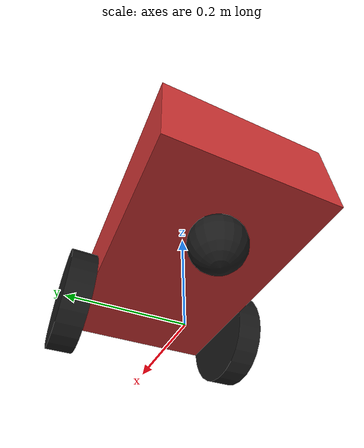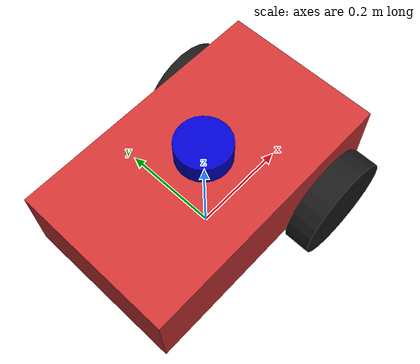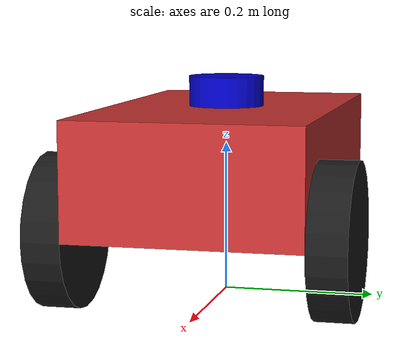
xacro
<?xml version="1.0"?>
<robot xmlns:xacro="http://www.ros.org/wiki/xacro" name="mars_robot">

  <!-- Include the robot model -->
  <xacro:include filename="$(find mars_robots)/urdf/mars_robot.urdf.xacro" />

  <!-- Robot color parameter - allows configuring robots with different colors -->
  <xacro:arg name="robot_color" default="Red"/>

</robot>

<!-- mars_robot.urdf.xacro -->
<robot xmlns:xacro="http://www.ros.org/wiki/xacro" name="mars_robot">

  <!-- Include the differential drive plugin -->
  <xacro:include filename="$(find mars_robots)/urdf/mars_robot.gazebo.xacro" />

  <!-- Robot Properties -->
  <xacro:property name="chassis_length" value="0.5" />
  <xacro:property name="chassis_width" value="0.3" />
  <xacro:property name="chassis_height" value="0.15" />
  <xacro:property name="chassis_mass" value="5.0" />

  <xacro:property name="wheel_radius" value="0.1" />
  <xacro:property name="wheel_width" value="0.05" />
  <xacro:property name="wheel_mass" value="0.5" />
  <xacro:property name="wheel_offset_x" value="0.15" />
  <xacro:property name="wheel_offset_y" value="0.175" />
  <xacro:property name="wheel_offset_z" value="0.0" />

  <xacro:property name="caster_radius" value="0.05" />
  <xacro:property name="caster_mass" value="0.5" />

  <!-- Base Footprint Link - This is the robot's reference point on the ground -->
  <link name="base_footprint"/>

  <!-- Base Link - Main chassis of the robot -->
  <link name="base_link">
    <collision>
      <origin xyz="0 0 ${chassis_height/2}" rpy="0 0 0"/>
      <geometry>
        <box size="${chassis_length} ${chassis_width} ${chassis_height}"/>
      </geometry>
    </collision>
    <visual>
      <origin xyz="0 0 ${chassis_height/2}" rpy="0 0 0"/>
      <geometry>
        <box size="${chassis_length} ${chassis_width} ${chassis_height}"/>
      </geometry>
      <material name="red">
        <color rgba="0.8 0.2 0.2 1.0"/>
      </material>
    </visual>
    <inertial>
      <origin xyz="0 0 ${chassis_height/2}" rpy="0 0 0"/>
      <mass value="${chassis_mass}"/>
      <inertia
        ixx="${chassis_mass/12.0 * (chassis_width*chassis_width + chassis_height*chassis_height)}"
        ixy="0.0"
        ixz="0.0"
        iyy="${chassis_mass/12.0 * (chassis_length*chassis_length + chassis_height*chassis_height)}"
        iyz="0.0"
        izz="${chassis_mass/12.0 * (chassis_length*chassis_length + chassis_width*chassis_width)}"/>
    </inertial>
  </link>

  <!-- Base Footprint to Base Link Joint -->
  <joint name="base_footprint_joint" type="fixed">
    <parent link="base_footprint"/>
    <child link="base_link"/>
    <origin xyz="0 0 ${wheel_radius}" rpy="0 0 0"/>
  </joint>

  <!-- Left Wheel Link -->
  <link name="left_wheel">
    <collision>
      <origin xyz="0 0 0" rpy="${pi/2} 0 0"/>
      <geometry>
        <cylinder radius="${wheel_radius}" length="${wheel_width}"/>
      </geometry>
    </collision>
    <visual>
      <origin xyz="0 0 0" rpy="${pi/2} 0 0"/>
      <geometry>
        <cylinder radius="${wheel_radius}" length="${wheel_width}"/>
      </geometry>
      <material name="black">
        <color rgba="0.1 0.1 0.1 1.0"/>
      </material>
    </visual>
    <inertial>
      <origin xyz="0 0 0" rpy="${pi/2} 0 0"/>
      <mass value="${wheel_mass}"/>
      <inertia
        ixx="${wheel_mass/12.0 * (3*wheel_radius*wheel_radius + wheel_width*wheel_width)}"
        ixy="0.0"
        ixz="0.0"
        iyy="${wheel_mass/12.0 * (3*wheel_radius*wheel_radius + wheel_width*wheel_width)}"
        iyz="0.0"
        izz="${wheel_mass/2.0 * wheel_radius*wheel_radius}"/>
    </inertial>
  </link>

  <!-- Left Wheel Joint -->
  <joint name="left_wheel_joint" type="continuous">
    <parent link="base_link"/>
    <child link="left_wheel"/>
    <origin xyz="${wheel_offset_x} ${wheel_offset_y} ${wheel_offset_z}" rpy="0 0 0"/>
    <axis xyz="0 1 0"/>
  </joint>

  <!-- Right Wheel Link -->
  <link name="right_wheel">
    <collision>
      <origin xyz="0 0 0" rpy="${pi/2} 0 0"/>
      <geometry>
        <cylinder radius="${wheel_radius}" length="${wheel_width}"/>
      </geometry>
    </collision>
    <visual>
      <origin xyz="0 0 0" rpy="${pi/2} 0 0"/>
      <geometry>
        <cylinder radius="${wheel_radius}" length="${wheel_width}"/>
      </geometry>
      <material name="black">
        <color rgba="0.1 0.1 0.1 1.0"/>
      </material>
    </visual>
    <inertial>
      <origin xyz="0 0 0" rpy="${pi/2} 0 0"/>
      <mass value="${wheel_mass}"/>
      <inertia
        ixx="${wheel_mass/12.0 * (3*wheel_radius*wheel_radius + wheel_width*wheel_width)}"
        ixy="0.0"
        ixz="0.0"
        iyy="${wheel_mass/12.0 * (3*wheel_radius*wheel_radius + wheel_width*wheel_width)}"
        iyz="0.0"
        izz="${wheel_mass/2.0 * wheel_radius*wheel_radius}"/>
    </inertial>
  </link>

  <!-- Right Wheel Joint -->
  <joint name="right_wheel_joint" type="continuous">
    <parent link="base_link"/>
    <child link="right_wheel"/>
    <origin xyz="${wheel_offset_x} -${wheel_offset_y} ${wheel_offset_z}" rpy="0 0 0"/>
    <axis xyz="0 1 0"/>
  </joint>

  <!-- Caster Wheel Link -->
  <link name="caster_wheel">
    <collision>
      <origin xyz="0 0 0" rpy="0 0 0"/>
      <geometry>
        <sphere radius="${caster_radius}"/>
      </geometry>
    </collision>
    <visual>
      <origin xyz="0 0 0" rpy="0 0 0"/>
      <geometry>
        <sphere radius="${caster_radius}"/>
      </geometry>
      <material name="black">
        <color rgba="0.1 0.1 0.1 1.0"/>
      </material>
    </visual>
    <inertial>
      <origin xyz="0 0 0" rpy="0 0 0"/>
      <mass value="${caster_mass}"/>
      <inertia
        ixx="${2.0*caster_mass*caster_radius*caster_radius/5.0}"
        ixy="0.0"
        ixz="0.0"
        iyy="${2.0*caster_mass*caster_radius*caster_radius/5.0}"
        iyz="0.0"
        izz="${2.0*caster_mass*caster_radius*caster_radius/5.0}"/>
    </inertial>
  </link>

  <!-- Caster Wheel Joint -->
  <joint name="caster_wheel_joint" type="fixed">
    <parent link="base_link"/>
    <child link="caster_wheel"/>
    <origin xyz="-${chassis_length/4} 0 -${caster_radius/2}" rpy="0 0 0"/>
  </joint>

  <!-- LiDAR Sensor Link -->
  <link name="lidar_link">
    <collision>
      <origin xyz="0 0 0" rpy="0 0 0"/>
      <geometry>
        <cylinder radius="0.05" length="0.04"/>
      </geometry>
    </collision>
    <visual>
      <origin xyz="0 0 0" rpy="0 0 0"/>
      <geometry>
        <cylinder radius="0.05" length="0.04"/>
      </geometry>
      <material name="blue">
        <color rgba="0.0 0.0 0.8 1.0"/>
      </material>
    </visual>
    <inertial>
      <mass value="0.1"/>
      <origin xyz="0 0 0" rpy="0 0 0"/>
      <inertia
        ixx="0.001"
        ixy="0.0"
        ixz="0.0"
        iyy="0.001"
        iyz="0.0"
        izz="0.001"/>
    </inertial>
  </link>

  <!-- LiDAR Sensor Joint -->
  <joint name="lidar_joint" type="fixed">
    <parent link="base_link"/>
    <child link="lidar_link"/>
    <origin xyz="0 0 ${chassis_height + 0.02}" rpy="0 0 0"/>
  </joint>

</robot>
